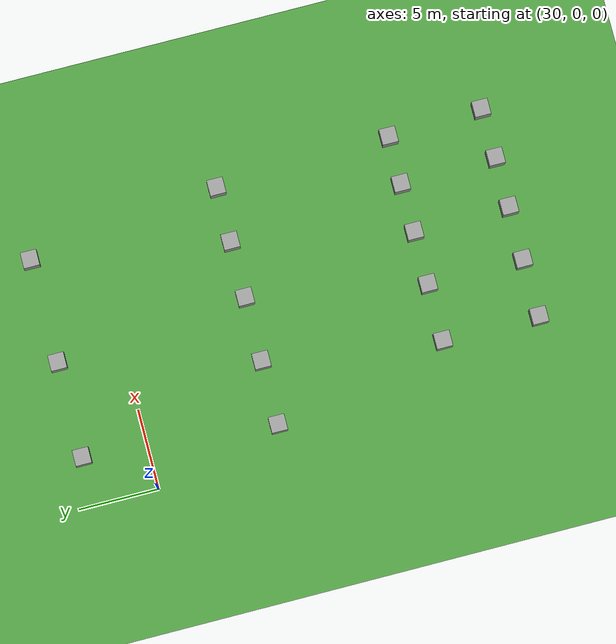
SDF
<sdf version="1.4">
 <world name="default">
  <model name="ground_plane">
   <static>1</static>
   <link name="link">
    <collision name="collision">
     <geometry><plane><normal>0 0 1</normal><size>10000 10000</size></plane></geometry>
     <surface><friction><ode><mu>100</mu><mu2>50</mu2></ode></friction></surface>
    </collision>
    <visual name="visual">
     <cast_shadows>0</cast_shadows>
     <geometry><plane><normal>0 0 1</normal><size>10000 10000</size></plane></geometry>
     <material>
      <script>
       <uri>model://ds_grass_background/materials/scripts</uri>
       <uri>model://ds_grass_background/materials/textures</uri>
       <name>GrassBackground</name>
      </script>
     </material>
    </visual>
    <velocity_decay><linear>0</linear><angular>0</angular></velocity_decay>
   </link>
  </model>
  <model name="unit_box_7">
   <pose>32 -8 0.5 -0 -0 -0</pose>
   <link name="link">
    <inertial>
     <mass>1</mass>
     <inertia><ixx>1</ixx><ixy>0</ixy><ixz>0</ixz><iyy>1</iyy><iyz>0</iyz><izz>1</izz></inertia>
    </inertial>
    <collision name="collision"><geometry><box><size>2.37839 3.68138 1</size></box></geometry></collision>
    <visual name="visual">
     <geometry><box><size>1 1 1</size></box></geometry>
     <material>
      <script><uri>file://media/materials/scripts/gazebo.material</uri><name>Gazebo/Grey</name></script>
     </material>
    </visual>
    <velocity_decay><linear>0</linear><angular>0</angular></velocity_decay>
   </link>
   <static>0</static>
  </model>
  <model name="unit_box_8">
   <pose>36 -8 0.5 -0 -0 -0</pose>
   <link name="link">
    <inertial>
     <mass>1</mass>
     <inertia><ixx>1</ixx><ixy>0</ixy><ixz>0</ixz><iyy>1</iyy><iyz>0</iyz><izz>1</izz></inertia>
    </inertial>
    <collision name="collision"><geometry><box><size>2.47583 3.55923 1</size></box></geometry></collision>
    <visual name="visual">
     <geometry><box><size>1 1 1</size></box></geometry>
     <material>
      <script><uri>file://media/materials/scripts/gazebo.material</uri><name>Gazebo/Grey</name></script>
     </material>
    </visual>
    <velocity_decay><linear>0</linear><angular>0</angular></velocity_decay>
   </link>
   <static>0</static>
  </model>
  <model name="unit_box_9">
   <pose>40 -8 0.5 -0 -0 -0</pose>
   <link name="link">
    <inertial>
     <mass>1</mass>
     <inertia><ixx>1</ixx><ixy>0</ixy><ixz>0</ixz><iyy>1</iyy><iyz>0</iyz><izz>1</izz></inertia>
    </inertial>
    <collision name="collision"><geometry><box><size>2.4338 3.65108 1</size></box></geometry></collision>
    <visual name="visual">
     <geometry><box><size>1 1 1</size></box></geometry>
     <material>
      <script><uri>file://media/materials/scripts/gazebo.material</uri><name>Gazebo/Grey</name></script>
     </material>
    </visual>
    <velocity_decay><linear>0</linear><angular>0</angular></velocity_decay>
   </link>
   <static>0</static>
  </model>
  <model name="unit_box_10">
   <pose>43.5513 -8 0.5 -0 -0 -0</pose>
   <link name="link">
    <inertial>
     <mass>1</mass>
     <inertia><ixx>1</ixx><ixy>0</ixy><ixz>0</ixz><iyy>1</iyy><iyz>0</iyz><izz>1</izz></inertia>
    </inertial>
    <collision name="collision"><geometry><box><size>2.3842 3.69155 1</size></box></geometry></collision>
    <visual name="visual">
     <geometry><box><size>1 1 1</size></box></geometry>
     <material>
      <script><uri>file://media/materials/scripts/gazebo.material</uri><name>Gazebo/Grey</name></script>
     </material>
    </visual>
    <velocity_decay><linear>0</linear><angular>0</angular></velocity_decay>
   </link>
   <static>0</static>
  </model>
  <model name="unit_box_11">
   <pose>47 -8 0.5 0 -0 0</pose>
   <link name="link">
    <inertial>
     <mass>1</mass>
     <inertia><ixx>1</ixx><ixy>0</ixy><ixz>0</ixz><iyy>1</iyy><iyz>0</iyz><izz>1</izz></inertia>
    </inertial>
    <collision name="collision"><geometry><box><size>2.35215 3.67168 1</size></box></geometry></collision>
    <visual name="visual">
     <geometry><box><size>1 1 1</size></box></geometry>
     <material>
      <script><uri>file://media/materials/scripts/gazebo.material</uri><name>Gazebo/Grey</name></script>
     </material>
    </visual>
    <velocity_decay><linear>0</linear><angular>0</angular></velocity_decay>
   </link>
   <static>0</static>
  </model>
  <model name="unit_box_21">
   <pose>34.4247 -19 0.5 -0 -0 -0</pose>
   <link name="link">
    <inertial>
     <mass>1</mass>
     <inertia><ixx>1</ixx><ixy>0</ixy><ixz>0</ixz><iyy>1</iyy><iyz>0</iyz><izz>1</izz></inertia>
    </inertial>
    <collision name="collision"><geometry><box><size>2.3831 3.58623 1</size></box></geometry></collision>
    <visual name="visual">
     <geometry><box><size>1 1 1</size></box></geometry>
     <material>
      <script><uri>file://media/materials/scripts/gazebo.material</uri><name>Gazebo/Grey</name></script>
     </material>
    </visual>
    <velocity_decay><linear>0</linear><angular>0</angular></velocity_decay>
   </link>
   <static>0</static>
  </model>
  <model name="unit_box_22">
   <pose>38 -19 0.5 0 -0 0</pose>
   <link name="link">
    <inertial>
     <mass>1</mass>
     <inertia><ixx>1</ixx><ixy>0</ixy><ixz>0</ixz><iyy>1</iyy><iyz>0</iyz><izz>1</izz></inertia>
    </inertial>
    <collision name="collision"><geometry><box><size>2.43109 3.62962 1</size></box></geometry></collision>
    <visual name="visual">
     <geometry><box><size>1 1 1</size></box></geometry>
     <material>
      <script><uri>file://media/materials/scripts/gazebo.material</uri><name>Gazebo/Grey</name></script>
     </material>
    </visual>
    <velocity_decay><linear>0</linear><angular>0</angular></velocity_decay>
   </link>
   <static>0</static>
  </model>
  <model name="unit_box_23">
   <pose>41.3223 -19.012 0.5 0 -0 0</pose>
   <link name="link">
    <inertial>
     <mass>1</mass>
     <inertia><ixx>1</ixx><ixy>0</ixy><ixz>0</ixz><iyy>1</iyy><iyz>0</iyz><izz>1</izz></inertia>
    </inertial>
    <collision name="collision"><geometry><box><size>1.99996 3.42177 1</size></box></geometry></collision>
    <visual name="visual">
     <geometry><box><size>1 1 1</size></box></geometry>
     <material>
      <script><uri>file://media/materials/scripts/gazebo.material</uri><name>Gazebo/Grey</name></script>
     </material>
    </visual>
    <velocity_decay><linear>0</linear><angular>0</angular></velocity_decay>
   </link>
   <static>0</static>
  </model>
  <model name="unit_box_24">
   <pose>44.3843 -18.9817 0.5 -0 -0 -0</pose>
   <link name="link">
    <inertial>
     <mass>1</mass>
     <inertia><ixx>1</ixx><ixy>0</ixy><ixz>0</ixz><iyy>1</iyy><iyz>0</iyz><izz>1</izz></inertia>
    </inertial>
    <collision name="collision"><geometry><box><size>2.02042 3.26771 1</size></box></geometry></collision>
    <visual name="visual">
     <geometry><box><size>1 1 1</size></box></geometry>
     <material>
      <script><uri>file://media/materials/scripts/gazebo.material</uri><name>Gazebo/Grey</name></script>
     </material>
    </visual>
    <velocity_decay><linear>0</linear><angular>0</angular></velocity_decay>
   </link>
   <static>0</static>
  </model>
  <model name="unit_box_25">
   <pose>47.4045 -19 0.5 -0 -0 -0</pose>
   <link name="link">
    <inertial>
     <mass>1</mass>
     <inertia><ixx>1</ixx><ixy>0</ixy><ixz>0</ixz><iyy>1</iyy><iyz>0</iyz><izz>1</izz></inertia>
    </inertial>
    <collision name="collision"><geometry><box><size>2.20829 3.36382 1</size></box></geometry></collision>
    <visual name="visual">
     <geometry><box><size>1 1 1</size></box></geometry>
     <material>
      <script><uri>file://media/materials/scripts/gazebo.material</uri><name>Gazebo/Grey</name></script>
     </material>
    </visual>
    <velocity_decay><linear>0</linear><angular>0</angular></velocity_decay>
   </link>
   <static>0</static>
  </model>
  <model name="unit_box_47">
   <pose>33.0418 3.99789 0.5 0 -0 0</pose>
   <link name="link">
    <inertial>
     <mass>1</mass>
     <inertia><ixx>1</ixx><ixy>0</ixy><ixz>0</ixz><iyy>1</iyy><iyz>0</iyz><izz>1</izz></inertia>
    </inertial>
    <collision name="collision"><geometry><box><size>4.47388 1.76513 1</size></box></geometry></collision>
    <visual name="visual">
     <geometry><box><size>1 1 1</size></box></geometry>
     <material>
      <script><uri>file://media/materials/scripts/gazebo.material</uri><name>Gazebo/Grey</name></script>
     </material>
    </visual>
    <velocity_decay><linear>0</linear><angular>0</angular></velocity_decay>
   </link>
   <static>0</static>
  </model>
  <model name="unit_box_48">
   <pose>39.0206 4.03052 0.499995 5e-06 1.61559e-27 -2e-06</pose>
   <link name="link">
    <inertial>
     <mass>1</mass>
     <inertia><ixx>1</ixx><ixy>0</ixy><ixz>0</ixz><iyy>1</iyy><iyz>0</iyz><izz>1</izz></inertia>
    </inertial>
    <collision name="collision"><geometry><box><size>5.32035 1.99106 1</size></box></geometry></collision>
    <visual name="visual">
     <geometry><box><size>1 1 1</size></box></geometry>
     <material>
      <script><uri>file://media/materials/scripts/gazebo.material</uri><name>Gazebo/Grey</name></script>
     </material>
    </visual>
    <velocity_decay><linear>0</linear><angular>0</angular></velocity_decay>
   </link>
   <static>0</static>
  </model>
  <model name="unit_box_49">
   <pose>45.5371 4.11355 0.5 0 0 -1e-06</pose>
   <link name="link">
    <inertial>
     <mass>1</mass>
     <inertia><ixx>1</ixx><ixy>0</ixy><ixz>0</ixz><iyy>1</iyy><iyz>0</iyz><izz>1</izz></inertia>
    </inertial>
    <collision name="collision"><geometry><box><size>5.11899 1.88013 1</size></box></geometry></collision>
    <visual name="visual">
     <geometry><box><size>1 1 1</size></box></geometry>
     <material>
      <script><uri>file://media/materials/scripts/gazebo.material</uri><name>Gazebo/Grey</name></script>
     </material>
    </visual>
    <velocity_decay><linear>0</linear><angular>0</angular></velocity_decay>
   </link>
   <static>0</static>
  </model>
  <model name="unit_box_59">
   <pose>34.3982 -25.0472 0.5 -2e-06 -3e-06 0</pose>
   <link name="link">
    <inertial>
     <mass>1</mass>
     <inertia><ixx>1</ixx><ixy>0</ixy><ixz>0</ixz><iyy>1</iyy><iyz>0</iyz><izz>1</izz></inertia>
    </inertial>
    <collision name="collision"><geometry><box><size>2.4768 3.83435 1</size></box></geometry></collision>
    <visual name="visual">
     <geometry><box><size>1 1 1</size></box></geometry>
     <material>
      <script><uri>file://media/materials/scripts/gazebo.material</uri><name>Gazebo/Grey</name></script>
     </material>
    </visual>
    <velocity_decay><linear>0</linear><angular>0</angular></velocity_decay>
   </link>
   <static>0</static>
  </model>
  <model name="unit_box_60">
   <pose>38 -25 0.5 0 -0 0</pose>
   <link name="link">
    <inertial>
     <mass>1</mass>
     <inertia><ixx>1</ixx><ixy>0</ixy><ixz>0</ixz><iyy>1</iyy><iyz>0</iyz><izz>1</izz></inertia>
    </inertial>
    <collision name="collision"><geometry><box><size>2.49072 4 1</size></box></geometry></collision>
    <visual name="visual">
     <geometry><box><size>1 1 1</size></box></geometry>
     <material>
      <script><uri>file://media/materials/scripts/gazebo.material</uri><name>Gazebo/Grey</name></script>
     </material>
    </visual>
    <velocity_decay><linear>0</linear><angular>0</angular></velocity_decay>
   </link>
   <static>0</static>
  </model>
  <model name="unit_box_61">
   <pose>41.3613 -25.014 0.499995 0 4e-06 0</pose>
   <link name="link">
    <inertial>
     <mass>1</mass>
     <inertia><ixx>1</ixx><ixy>0</ixy><ixz>0</ixz><iyy>1</iyy><iyz>0</iyz><izz>1</izz></inertia>
    </inertial>
    <collision name="collision"><geometry><box><size>2.30224 4 1</size></box></geometry></collision>
    <visual name="visual">
     <geometry><box><size>1 1 1</size></box></geometry>
     <material>
      <script><uri>file://media/materials/scripts/gazebo.material</uri><name>Gazebo/Grey</name></script>
     </material>
    </visual>
    <velocity_decay><linear>0</linear><angular>0</angular></velocity_decay>
   </link>
   <static>0</static>
  </model>
  <model name="unit_box_62">
   <pose>44.5058 -25.0059 0.499995 0 4e-06 0</pose>
   <link name="link">
    <inertial>
     <mass>1</mass>
     <inertia><ixx>1</ixx><ixy>0</ixy><ixz>0</ixz><iyy>1</iyy><iyz>0</iyz><izz>1</izz></inertia>
    </inertial>
    <collision name="collision"><geometry><box><size>2.19135 3.91684 1</size></box></geometry></collision>
    <visual name="visual">
     <geometry><box><size>1 1 1</size></box></geometry>
     <material>
      <script><uri>file://media/materials/scripts/gazebo.material</uri><name>Gazebo/Grey</name></script>
     </material>
    </visual>
    <velocity_decay><linear>0</linear><angular>0</angular></velocity_decay>
   </link>
   <static>0</static>
  </model>
  <model name="unit_box_63">
   <pose>47.6445 -24.9314 0.499998 0 -1e-06 0</pose>
   <link name="link">
    <inertial>
     <mass>1</mass>
     <inertia><ixx>1</ixx><ixy>0</ixy><ixz>0</ixz><iyy>1</iyy><iyz>0</iyz><izz>1</izz></inertia>
    </inertial>
    <collision name="collision"><geometry><box><size>2.3153 3.86573 1</size></box></geometry></collision>
    <visual name="visual">
     <geometry><box><size>1 1 1</size></box></geometry>
     <material>
      <script><uri>file://media/materials/scripts/gazebo.material</uri><name>Gazebo/Grey</name></script>
     </material>
    </visual>
    <velocity_decay><linear>0</linear><angular>0</angular></velocity_decay>
   </link>
   <static>0</static>
  </model>
 </world>
</sdf>
